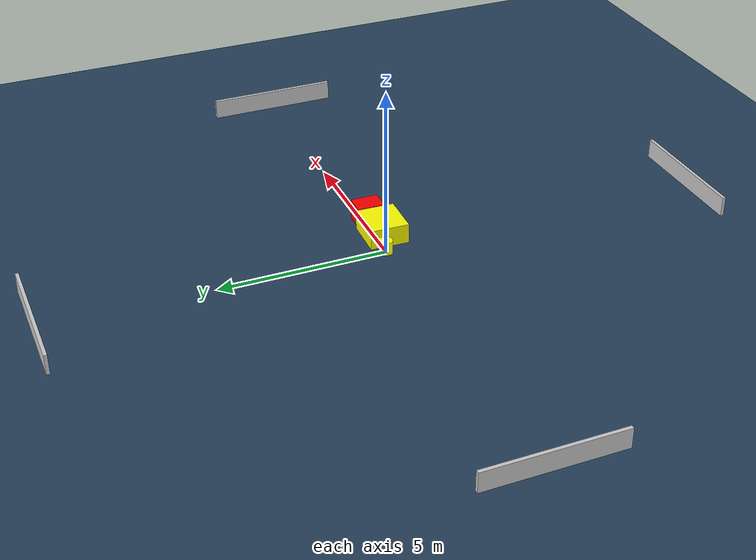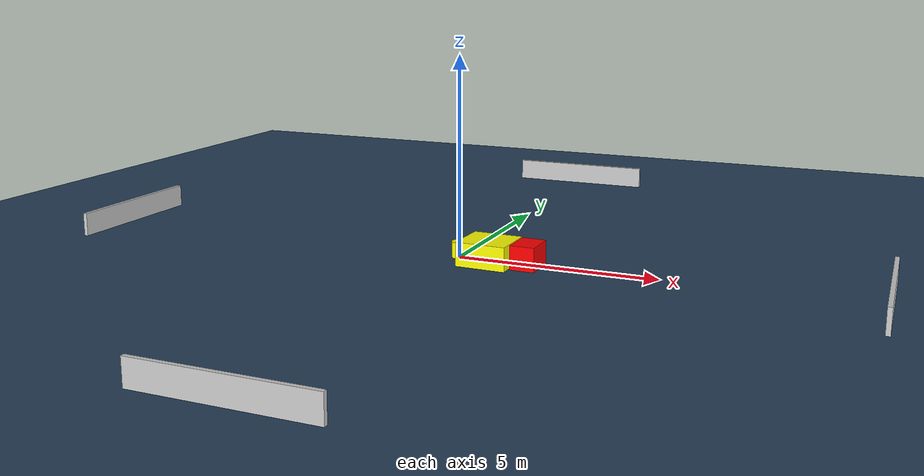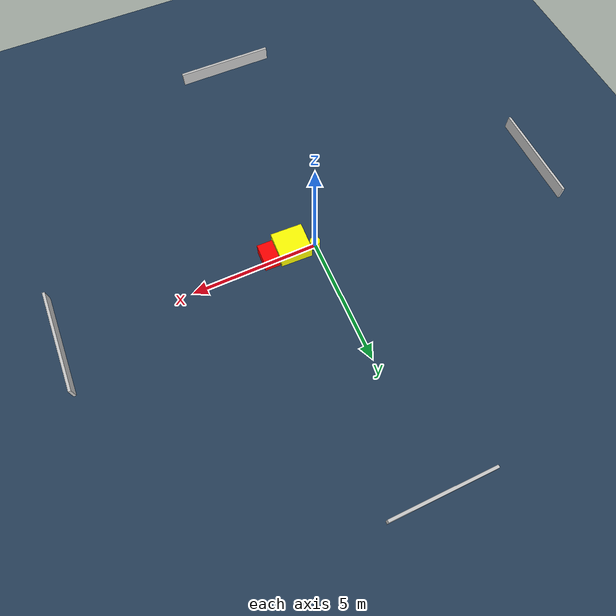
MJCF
<?xml version="1.0" ?>
<mujoco model="generated_environment">
  <option timestep="0.01" integrator="RK4" cone="elliptic"/>
  <default>
    <geom density="1"/>
  </default>
  <asset>
    <texture builtin="gradient" height="3072" name="skybox" rgb1="0.3 0.5 0.7" rgb2="0 0 0" type="skybox" width="512"/>
    <texture builtin="checker" height="300" name="groundplane" rgb1="0.2 0.3 0.4" rgb2="0.1 0.2 0.3" type="2d" width="300"/>
    <material name="groundplane" reflectance="0.2" texrepeat="5 5" texture="groundplane"/>
  </asset>
  <worldbody>
    <light dir="0 0 -1" directional="true" pos="0 0 1.5"/>
    <geom condim="3" friction="0.5 0.005 0.001" material="groundplane" name="floor" pos="0 0 0" size="0 0 0.05" type="plane"/>
    <body name="walls">
      <geom name="wall_1" condim="4" pos="-10.0 0.0 0.3" rgba="0.800000011920929 0.800000011920929 0.800000011920929 1.0" size="0.05 2.0 0.3" type="box"/>
      <geom name="wall_2" condim="4" pos="10.0 0.0 0.3" rgba="0.800000011920929 0.800000011920929 0.800000011920929 1.0" size="0.05 2.0 0.3" type="box"/>
      <geom name="wall_3" condim="4" pos="0.0 -10.0 0.3" rgba="0.800000011920929 0.800000011920929 0.800000011920929 1.0" size="2.0 0.05 0.3" type="box"/>
      <geom name="wall_4" condim="4" pos="0.0 10.0 0.3" rgba="0.800000011920929 0.800000011920929 0.800000011920929 1.0" size="2.0 0.05 0.3" type="box"/>
    </body>
    <body name="robot">
      <joint name="joint_x" type="slide" pos="0 0 0" axis="1 0 0"/>
      <joint name="joint_y" type="slide" pos="0 0 0" axis="0 1 0"/>
      <geom name="robot" type="cylinder" pos="0.0 0.0 0.2" size="0.2 0.2 0.0" mass="5.0" friction="1.0 0.005 0.0001" condim="4" rgba="1.0 1.0 0.0 1.0"/>
    </body>
    <body name="obstacle_1_movable">
      <geom name="obstacle_1_movable" condim="4" pos="0.8792840519186567 -0.2524039726492883 0.3" euler="0 0 88.10549700376848" friction="0.0 0.005 0.001" rgba="1.0 1.0 0.0 1.0" size="0.5798996767906457 0.6295937362544555 0.3" type="box" mass="0.1"/>
      <joint type="free"/>
    </body>
    <body name="obstacle_2_static">
      <geom name="obstacle_2_static" condim="4" pos="1.8509091383324616 -0.1898228449770877 0.3" euler="0 0 359.0247295873513" friction="0.0 0.005 0.001" rgba="1.0 0.0 0.0 1.0" size="0.30817213834166546 0.41609648622368467 0.3" type="box"/>
    </body>
  </worldbody>
  <actuator>
    <motor name="actuator_x" joint="joint_x" gear="1" ctrlrange="-1 1"/>
    <motor name="actuator_y" joint="joint_y" gear="1" ctrlrange="-1 1"/>
  </actuator>
</mujoco>
